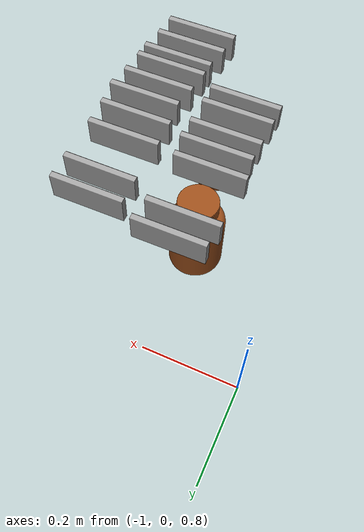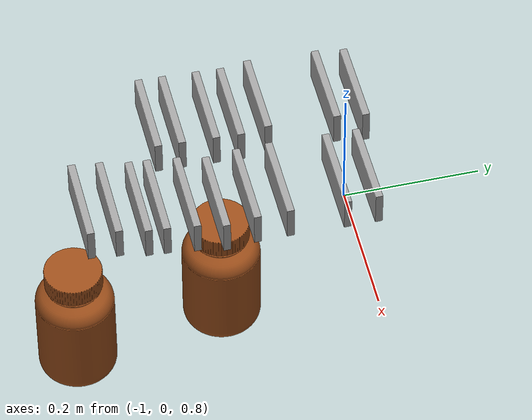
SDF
<sdf version="1.7">
 <world name="default">
  <model name="med_1_0_clone_1">
   <link name="link_0">
    <inertial>
     <mass>1</mass>
     <inertia>
      <ixx>0.166667</ixx>
      <ixy>0</ixy>
      <ixz>0</ixz>
      <iyy>0.166667</iyy>
      <iyz>0</iyz>
      <izz>0.166667</izz>
     </inertia>
    </inertial>
    <pose>0 -0.005 -0.025 0 -0 0</pose>
    <visual name="visual">
     <pose>0 0.005 0.025 0 -0 0</pose>
     <geometry><mesh><uri>model://med_1/meshes/med-1.dae</uri><scale>0.01 0.01 0.01</scale></mesh></geometry>
     <material>
      <shader type="pixel"><normal_map>__default__</normal_map></shader>
      <emissive>0 0 0 1</emissive>
     </material>
    </visual>
    <collision name="collision">
     <pose>0 0.005 0.025 0 -0 0</pose>
     <geometry><mesh><uri>model://med_1/meshes/med-1.dae</uri><scale>0.01 0.01 0.01</scale></mesh></geometry>
     <surface>
      <friction>
       <ode><mu>1</mu><mu2>1</mu2><fdir1>0 0 0</fdir1><slip1>0</slip1><slip2>0</slip2></ode>
       <torsional>
        <coefficient>1</coefficient>
        <patch_radius>0</patch_radius>
        <surface_radius>0</surface_radius>
        <use_patch_radius>1</use_patch_radius>
        <ode><slip>0</slip></ode>
       </torsional>
      </friction>
      <bounce><restitution_coefficient>0</restitution_coefficient><threshold>1e+06</threshold></bounce>
      <contact>
       <collide_without_contact>0</collide_without_contact>
       <collide_without_contact_bitmask>1</collide_without_contact_bitmask>
       <collide_bitmask>1</collide_bitmask>
       <ode>
        <soft_cfm>0</soft_cfm>
        <soft_erp>0.2</soft_erp>
        <kp>1e+13</kp>
        <kd>1</kd>
        <max_vel>0.01</max_vel>
        <min_depth>0</min_depth>
       </ode>
       <bullet>
        <split_impulse>1</split_impulse>
        <split_impulse_penetration_threshold>-0.01</split_impulse_penetration_threshold>
        <soft_cfm>0</soft_cfm>
        <soft_erp>0.2</soft_erp>
        <kp>1e+13</kp>
        <kd>1</kd>
       </bullet>
      </contact>
     </surface>
    </collision>
   </link>
   <static>0</static>
   <pose>-0.842985 -0.036532 1.20018 9e-06 -1e-06 -3.1318</pose>
  </model>
  <model name="med_1_0_clone_3">
   <link name="link_0">
    <inertial>
     <mass>1</mass>
     <inertia>
      <ixx>0.166667</ixx>
      <ixy>0</ixy>
      <ixz>0</ixz>
      <iyy>0.166667</iyy>
      <iyz>0</iyz>
      <izz>0.166667</izz>
     </inertia>
    </inertial>
    <pose>0 -0.005 -0.025 0 -0 0</pose>
    <visual name="visual">
     <pose>0 0.005 0.025 0 -0 0</pose>
     <geometry><mesh><uri>model://med_1/meshes/med-1.dae</uri><scale>0.01 0.01 0.01</scale></mesh></geometry>
     <material>
      <shader type="pixel"><normal_map>__default__</normal_map></shader>
      <emissive>0 0 0 1</emissive>
     </material>
    </visual>
    <collision name="collision">
     <pose>0 0.005 0.025 0 -0 0</pose>
     <geometry><mesh><uri>model://med_1/meshes/med-1.dae</uri><scale>0.01 0.01 0.01</scale></mesh></geometry>
     <surface>
      <friction>
       <ode><mu>1</mu><mu2>1</mu2><fdir1>0 0 0</fdir1><slip1>0</slip1><slip2>0</slip2></ode>
       <torsional>
        <coefficient>1</coefficient>
        <patch_radius>0</patch_radius>
        <surface_radius>0</surface_radius>
        <use_patch_radius>1</use_patch_radius>
        <ode><slip>0</slip></ode>
       </torsional>
      </friction>
      <bounce><restitution_coefficient>0</restitution_coefficient><threshold>1e+06</threshold></bounce>
      <contact>
       <collide_without_contact>0</collide_without_contact>
       <collide_without_contact_bitmask>1</collide_without_contact_bitmask>
       <collide_bitmask>1</collide_bitmask>
       <ode>
        <soft_cfm>0</soft_cfm>
        <soft_erp>0.2</soft_erp>
        <kp>1e+13</kp>
        <kd>1</kd>
        <max_vel>0.01</max_vel>
        <min_depth>0</min_depth>
       </ode>
       <bullet>
        <split_impulse>1</split_impulse>
        <split_impulse_penetration_threshold>-0.01</split_impulse_penetration_threshold>
        <soft_cfm>0</soft_cfm>
        <soft_erp>0.2</soft_erp>
        <kp>1e+13</kp>
        <kd>1</kd>
       </bullet>
      </contact>
     </surface>
    </collision>
   </link>
   <static>0</static>
   <pose>-0.701388 -0.054881 1.20018 -2.5e-05 -0 -3.13179</pose>
  </model>
  <model name="med_1_0_clone_5">
   <link name="link_0">
    <inertial>
     <mass>1</mass>
     <inertia>
      <ixx>0.166667</ixx>
      <ixy>0</ixy>
      <ixz>0</ixz>
      <iyy>0.166667</iyy>
      <iyz>0</iyz>
      <izz>0.166667</izz>
     </inertia>
    </inertial>
    <pose>0 -0.005 -0.025 0 -0 0</pose>
    <visual name="visual">
     <pose>0 0.005 0.025 0 -0 0</pose>
     <geometry><mesh><uri>model://med_1/meshes/med-1.dae</uri><scale>0.01 0.01 0.01</scale></mesh></geometry>
     <material>
      <shader type="pixel"><normal_map>__default__</normal_map></shader>
      <emissive>0 0 0 1</emissive>
     </material>
    </visual>
    <collision name="collision">
     <pose>0 0.005 0.025 0 -0 0</pose>
     <geometry><mesh><uri>model://med_1/meshes/med-1.dae</uri><scale>0.01 0.01 0.01</scale></mesh></geometry>
     <surface>
      <friction>
       <ode><mu>1</mu><mu2>1</mu2><fdir1>0 0 0</fdir1><slip1>0</slip1><slip2>0</slip2></ode>
       <torsional>
        <coefficient>1</coefficient>
        <patch_radius>0</patch_radius>
        <surface_radius>0</surface_radius>
        <use_patch_radius>1</use_patch_radius>
        <ode><slip>0</slip></ode>
       </torsional>
      </friction>
      <bounce><restitution_coefficient>0</restitution_coefficient><threshold>1e+06</threshold></bounce>
      <contact>
       <collide_without_contact>0</collide_without_contact>
       <collide_without_contact_bitmask>1</collide_without_contact_bitmask>
       <collide_bitmask>1</collide_bitmask>
       <ode>
        <soft_cfm>0</soft_cfm>
        <soft_erp>0.2</soft_erp>
        <kp>1e+13</kp>
        <kd>1</kd>
        <max_vel>0.01</max_vel>
        <min_depth>0</min_depth>
       </ode>
       <bullet>
        <split_impulse>1</split_impulse>
        <split_impulse_penetration_threshold>-0.01</split_impulse_penetration_threshold>
        <soft_cfm>0</soft_cfm>
        <soft_erp>0.2</soft_erp>
        <kp>1e+13</kp>
        <kd>1</kd>
       </bullet>
      </contact>
     </surface>
    </collision>
   </link>
   <static>0</static>
   <pose>-0.70204 -0.096122 1.20019 -2.1e-05 -1e-06 -3.13738</pose>
  </model>
  <model name="med_1_0_clone_7">
   <link name="link_0">
    <inertial>
     <mass>1</mass>
     <inertia>
      <ixx>0.166667</ixx>
      <ixy>0</ixy>
      <ixz>0</ixz>
      <iyy>0.166667</iyy>
      <iyz>0</iyz>
      <izz>0.166667</izz>
     </inertia>
    </inertial>
    <pose>0 -0.005 -0.025 0 -0 0</pose>
    <visual name="visual">
     <pose>0 0.005 0.025 0 -0 0</pose>
     <geometry><mesh><uri>model://med_1/meshes/med-1.dae</uri><scale>0.01 0.01 0.01</scale></mesh></geometry>
     <material>
      <shader type="pixel"><normal_map>__default__</normal_map></shader>
      <emissive>0 0 0 1</emissive>
     </material>
    </visual>
    <collision name="collision">
     <pose>0 0.005 0.025 0 -0 0</pose>
     <geometry><mesh><uri>model://med_1/meshes/med-1.dae</uri><scale>0.01 0.01 0.01</scale></mesh></geometry>
     <surface>
      <friction>
       <ode><mu>1</mu><mu2>1</mu2><fdir1>0 0 0</fdir1><slip1>0</slip1><slip2>0</slip2></ode>
       <torsional>
        <coefficient>1</coefficient>
        <patch_radius>0</patch_radius>
        <surface_radius>0</surface_radius>
        <use_patch_radius>1</use_patch_radius>
        <ode><slip>0</slip></ode>
       </torsional>
      </friction>
      <bounce><restitution_coefficient>0</restitution_coefficient><threshold>1e+06</threshold></bounce>
      <contact>
       <collide_without_contact>0</collide_without_contact>
       <collide_without_contact_bitmask>1</collide_without_contact_bitmask>
       <collide_bitmask>1</collide_bitmask>
       <ode>
        <soft_cfm>0</soft_cfm>
        <soft_erp>0.2</soft_erp>
        <kp>1e+13</kp>
        <kd>1</kd>
        <max_vel>0.01</max_vel>
        <min_depth>0</min_depth>
       </ode>
       <bullet>
        <split_impulse>1</split_impulse>
        <split_impulse_penetration_threshold>-0.01</split_impulse_penetration_threshold>
        <soft_cfm>0</soft_cfm>
        <soft_erp>0.2</soft_erp>
        <kp>1e+13</kp>
        <kd>1</kd>
       </bullet>
      </contact>
     </surface>
    </collision>
   </link>
   <static>0</static>
   <pose>-0.700002 -0.258197 1.20019 1e-06 -2e-06 -3.13179</pose>
  </model>
  <model name="med_1_0_clone_8">
   <link name="link_0">
    <inertial>
     <mass>1</mass>
     <inertia>
      <ixx>0.166667</ixx>
      <ixy>0</ixy>
      <ixz>0</ixz>
      <iyy>0.166667</iyy>
      <iyz>0</iyz>
      <izz>0.166667</izz>
     </inertia>
    </inertial>
    <pose>0 -0.005 -0.025 0 -0 0</pose>
    <visual name="visual">
     <pose>0 0.005 0.025 0 -0 0</pose>
     <geometry><mesh><uri>model://med_1/meshes/med-1.dae</uri><scale>0.01 0.01 0.01</scale></mesh></geometry>
     <material>
      <shader type="pixel"><normal_map>__default__</normal_map></shader>
      <emissive>0 0 0 1</emissive>
     </material>
    </visual>
    <collision name="collision">
     <pose>0 0.005 0.025 0 -0 0</pose>
     <geometry><mesh><uri>model://med_1/meshes/med-1.dae</uri><scale>0.01 0.01 0.01</scale></mesh></geometry>
     <surface>
      <friction>
       <ode><mu>1</mu><mu2>1</mu2><fdir1>0 0 0</fdir1><slip1>0</slip1><slip2>0</slip2></ode>
       <torsional>
        <coefficient>1</coefficient>
        <patch_radius>0</patch_radius>
        <surface_radius>0</surface_radius>
        <use_patch_radius>1</use_patch_radius>
        <ode><slip>0</slip></ode>
       </torsional>
      </friction>
      <bounce><restitution_coefficient>0</restitution_coefficient><threshold>1e+06</threshold></bounce>
      <contact>
       <collide_without_contact>0</collide_without_contact>
       <collide_without_contact_bitmask>1</collide_without_contact_bitmask>
       <collide_bitmask>1</collide_bitmask>
       <ode>
        <soft_cfm>0</soft_cfm>
        <soft_erp>0.2</soft_erp>
        <kp>1e+13</kp>
        <kd>1</kd>
        <max_vel>0.01</max_vel>
        <min_depth>0</min_depth>
       </ode>
       <bullet>
        <split_impulse>1</split_impulse>
        <split_impulse_penetration_threshold>-0.01</split_impulse_penetration_threshold>
        <soft_cfm>0</soft_cfm>
        <soft_erp>0.2</soft_erp>
        <kp>1e+13</kp>
        <kd>1</kd>
       </bullet>
      </contact>
     </surface>
    </collision>
   </link>
   <static>0</static>
   <pose>-0.84749 -0.204821 1.20018 -1.6e-05 0 -3.13181</pose>
  </model>
  <model name="med_1_0_clone_10">
   <link name="link_0">
    <inertial>
     <mass>1</mass>
     <inertia>
      <ixx>0.166667</ixx>
      <ixy>0</ixy>
      <ixz>0</ixz>
      <iyy>0.166667</iyy>
      <iyz>0</iyz>
      <izz>0.166667</izz>
     </inertia>
    </inertial>
    <pose>0 -0.005 -0.025 0 -0 0</pose>
    <visual name="visual">
     <pose>0 0.005 0.025 0 -0 0</pose>
     <geometry><mesh><uri>model://med_1/meshes/med-1.dae</uri><scale>0.01 0.01 0.01</scale></mesh></geometry>
     <material>
      <shader type="pixel"><normal_map>__default__</normal_map></shader>
      <emissive>0 0 0 1</emissive>
     </material>
    </visual>
    <collision name="collision">
     <pose>0 0.005 0.025 0 -0 0</pose>
     <geometry><mesh><uri>model://med_1/meshes/med-1.dae</uri><scale>0.01 0.01 0.01</scale></mesh></geometry>
     <surface>
      <friction>
       <ode><mu>1</mu><mu2>1</mu2><fdir1>0 0 0</fdir1><slip1>0</slip1><slip2>0</slip2></ode>
       <torsional>
        <coefficient>1</coefficient>
        <patch_radius>0</patch_radius>
        <surface_radius>0</surface_radius>
        <use_patch_radius>1</use_patch_radius>
        <ode><slip>0</slip></ode>
       </torsional>
      </friction>
      <bounce><restitution_coefficient>0</restitution_coefficient><threshold>1e+06</threshold></bounce>
      <contact>
       <collide_without_contact>0</collide_without_contact>
       <collide_without_contact_bitmask>1</collide_without_contact_bitmask>
       <collide_bitmask>1</collide_bitmask>
       <ode>
        <soft_cfm>0</soft_cfm>
        <soft_erp>0.2</soft_erp>
        <kp>1e+13</kp>
        <kd>1</kd>
        <max_vel>0.01</max_vel>
        <min_depth>0</min_depth>
       </ode>
       <bullet>
        <split_impulse>1</split_impulse>
        <split_impulse_penetration_threshold>-0.01</split_impulse_penetration_threshold>
        <soft_cfm>0</soft_cfm>
        <soft_erp>0.2</soft_erp>
        <kp>1e+13</kp>
        <kd>1</kd>
       </bullet>
      </contact>
     </surface>
    </collision>
   </link>
   <static>0</static>
   <pose>-0.848659 -0.074496 1.20018 -8e-06 -1e-06 -3.13174</pose>
  </model>
  <model name="med_1_0_clone_11">
   <link name="link_0">
    <inertial>
     <mass>1</mass>
     <inertia>
      <ixx>0.166667</ixx>
      <ixy>0</ixy>
      <ixz>0</ixz>
      <iyy>0.166667</iyy>
      <iyz>0</iyz>
      <izz>0.166667</izz>
     </inertia>
    </inertial>
    <pose>0 -0.005 -0.025 0 -0 0</pose>
    <visual name="visual">
     <pose>0 0.005 0.025 0 -0 0</pose>
     <geometry><mesh><uri>model://med_1/meshes/med-1.dae</uri><scale>0.01 0.01 0.01</scale></mesh></geometry>
     <material>
      <shader type="pixel"><normal_map>__default__</normal_map></shader>
      <emissive>0 0 0 1</emissive>
     </material>
    </visual>
    <collision name="collision">
     <pose>0 0.005 0.025 0 -0 0</pose>
     <geometry><mesh><uri>model://med_1/meshes/med-1.dae</uri><scale>0.01 0.01 0.01</scale></mesh></geometry>
     <surface>
      <friction>
       <ode><mu>1</mu><mu2>1</mu2><fdir1>0 0 0</fdir1><slip1>0</slip1><slip2>0</slip2></ode>
       <torsional>
        <coefficient>1</coefficient>
        <patch_radius>0</patch_radius>
        <surface_radius>0</surface_radius>
        <use_patch_radius>1</use_patch_radius>
        <ode><slip>0</slip></ode>
       </torsional>
      </friction>
      <bounce><restitution_coefficient>0</restitution_coefficient><threshold>1e+06</threshold></bounce>
      <contact>
       <collide_without_contact>0</collide_without_contact>
       <collide_without_contact_bitmask>1</collide_without_contact_bitmask>
       <collide_bitmask>1</collide_bitmask>
       <ode>
        <soft_cfm>0</soft_cfm>
        <soft_erp>0.2</soft_erp>
        <kp>1e+13</kp>
        <kd>1</kd>
        <max_vel>0.01</max_vel>
        <min_depth>0</min_depth>
       </ode>
       <bullet>
        <split_impulse>1</split_impulse>
        <split_impulse_penetration_threshold>-0.01</split_impulse_penetration_threshold>
        <soft_cfm>0</soft_cfm>
        <soft_erp>0.2</soft_erp>
        <kp>1e+13</kp>
        <kd>1</kd>
       </bullet>
      </contact>
     </surface>
    </collision>
   </link>
   <static>0</static>
   <pose>-0.85286 -0.16694 1.20018 0 1e-06 -3.13179</pose>
  </model>
  <model name="med_1_0_clone_12">
   <link name="link_0">
    <inertial>
     <mass>1</mass>
     <inertia>
      <ixx>0.166667</ixx>
      <ixy>0</ixy>
      <ixz>0</ixz>
      <iyy>0.166667</iyy>
      <iyz>0</iyz>
      <izz>0.166667</izz>
     </inertia>
    </inertial>
    <pose>0 -0.005 -0.025 0 -0 0</pose>
    <visual name="visual">
     <pose>0 0.005 0.025 0 -0 0</pose>
     <geometry><mesh><uri>model://med_1/meshes/med-1.dae</uri><scale>0.01 0.01 0.01</scale></mesh></geometry>
     <material>
      <shader type="pixel"><normal_map>__default__</normal_map></shader>
      <emissive>0 0 0 1</emissive>
     </material>
    </visual>
    <collision name="collision">
     <pose>0 0.005 0.025 0 -0 0</pose>
     <geometry><mesh><uri>model://med_1/meshes/med-1.dae</uri><scale>0.01 0.01 0.01</scale></mesh></geometry>
     <surface>
      <friction>
       <ode><mu>1</mu><mu2>1</mu2><fdir1>0 0 0</fdir1><slip1>0</slip1><slip2>0</slip2></ode>
       <torsional>
        <coefficient>1</coefficient>
        <patch_radius>0</patch_radius>
        <surface_radius>0</surface_radius>
        <use_patch_radius>1</use_patch_radius>
        <ode><slip>0</slip></ode>
       </torsional>
      </friction>
      <bounce><restitution_coefficient>0</restitution_coefficient><threshold>1e+06</threshold></bounce>
      <contact>
       <collide_without_contact>0</collide_without_contact>
       <collide_without_contact_bitmask>1</collide_without_contact_bitmask>
       <collide_bitmask>1</collide_bitmask>
       <ode>
        <soft_cfm>0</soft_cfm>
        <soft_erp>0.2</soft_erp>
        <kp>1e+13</kp>
        <kd>1</kd>
        <max_vel>0.01</max_vel>
        <min_depth>0</min_depth>
       </ode>
       <bullet>
        <split_impulse>1</split_impulse>
        <split_impulse_penetration_threshold>-0.01</split_impulse_penetration_threshold>
        <soft_cfm>0</soft_cfm>
        <soft_erp>0.2</soft_erp>
        <kp>1e+13</kp>
        <kd>1</kd>
       </bullet>
      </contact>
     </surface>
    </collision>
   </link>
   <static>0</static>
   <pose>-0.851503 -0.283477 1.20018 -1.4e-05 -0 -3.1318</pose>
  </model>
  <model name="med_1_0_clone_13">
   <link name="link_0">
    <inertial>
     <mass>1</mass>
     <inertia>
      <ixx>0.166667</ixx>
      <ixy>0</ixy>
      <ixz>0</ixz>
      <iyy>0.166667</iyy>
      <iyz>0</iyz>
      <izz>0.166667</izz>
     </inertia>
    </inertial>
    <pose>0 -0.005 -0.025 0 -0 0</pose>
    <visual name="visual">
     <pose>0 0.005 0.025 0 -0 0</pose>
     <geometry><mesh><uri>model://med_1/meshes/med-1.dae</uri><scale>0.01 0.01 0.01</scale></mesh></geometry>
     <material>
      <shader type="pixel"><normal_map>__default__</normal_map></shader>
      <emissive>0 0 0 1</emissive>
     </material>
    </visual>
    <collision name="collision">
     <pose>0 0.005 0.025 0 -0 0</pose>
     <geometry><mesh><uri>model://med_1/meshes/med-1.dae</uri><scale>0.01 0.01 0.01</scale></mesh></geometry>
     <surface>
      <friction>
       <ode><mu>1</mu><mu2>1</mu2><fdir1>0 0 0</fdir1><slip1>0</slip1><slip2>0</slip2></ode>
       <torsional>
        <coefficient>1</coefficient>
        <patch_radius>0</patch_radius>
        <surface_radius>0</surface_radius>
        <use_patch_radius>1</use_patch_radius>
        <ode><slip>0</slip></ode>
       </torsional>
      </friction>
      <bounce><restitution_coefficient>0</restitution_coefficient><threshold>1e+06</threshold></bounce>
      <contact>
       <collide_without_contact>0</collide_without_contact>
       <collide_without_contact_bitmask>1</collide_without_contact_bitmask>
       <collide_bitmask>1</collide_bitmask>
       <ode>
        <soft_cfm>0</soft_cfm>
        <soft_erp>0.2</soft_erp>
        <kp>1e+13</kp>
        <kd>1</kd>
        <max_vel>0.01</max_vel>
        <min_depth>0</min_depth>
       </ode>
       <bullet>
        <split_impulse>1</split_impulse>
        <split_impulse_penetration_threshold>-0.01</split_impulse_penetration_threshold>
        <soft_cfm>0</soft_cfm>
        <soft_erp>0.2</soft_erp>
        <kp>1e+13</kp>
        <kd>1</kd>
       </bullet>
      </contact>
     </surface>
    </collision>
   </link>
   <static>0</static>
   <pose>-0.704642 -0.17234 1.20018 -2.6e-05 1e-06 -3.13179</pose>
  </model>
  <model name="med_1_0_clone_17">
   <link name="link_0">
    <inertial>
     <mass>1</mass>
     <inertia>
      <ixx>0.166667</ixx>
      <ixy>0</ixy>
      <ixz>0</ixz>
      <iyy>0.166667</iyy>
      <iyz>0</iyz>
      <izz>0.166667</izz>
     </inertia>
    </inertial>
    <pose>0 -0.005 -0.025 0 -0 0</pose>
    <visual name="visual">
     <pose>0 0.005 0.025 0 -0 0</pose>
     <geometry><mesh><uri>model://med_1/meshes/med-1.dae</uri><scale>0.01 0.01 0.01</scale></mesh></geometry>
     <material>
      <shader type="pixel"><normal_map>__default__</normal_map></shader>
      <emissive>0 0 0 1</emissive>
     </material>
    </visual>
    <collision name="collision">
     <pose>0 0.005 0.025 0 -0 0</pose>
     <geometry><mesh><uri>model://med_1/meshes/med-1.dae</uri><scale>0.01 0.01 0.01</scale></mesh></geometry>
     <surface>
      <friction>
       <ode><mu>1</mu><mu2>1</mu2><fdir1>0 0 0</fdir1><slip1>0</slip1><slip2>0</slip2></ode>
       <torsional>
        <coefficient>1</coefficient>
        <patch_radius>0</patch_radius>
        <surface_radius>0</surface_radius>
        <use_patch_radius>1</use_patch_radius>
        <ode><slip>0</slip></ode>
       </torsional>
      </friction>
      <bounce><restitution_coefficient>0</restitution_coefficient><threshold>1e+06</threshold></bounce>
      <contact>
       <collide_without_contact>0</collide_without_contact>
       <collide_without_contact_bitmask>1</collide_without_contact_bitmask>
       <collide_bitmask>1</collide_bitmask>
       <ode>
        <soft_cfm>0</soft_cfm>
        <soft_erp>0.2</soft_erp>
        <kp>1e+13</kp>
        <kd>1</kd>
        <max_vel>0.01</max_vel>
        <min_depth>0</min_depth>
       </ode>
       <bullet>
        <split_impulse>1</split_impulse>
        <split_impulse_penetration_threshold>-0.01</split_impulse_penetration_threshold>
        <soft_cfm>0</soft_cfm>
        <soft_erp>0.2</soft_erp>
        <kp>1e+13</kp>
        <kd>1</kd>
       </bullet>
      </contact>
     </surface>
    </collision>
   </link>
   <static>0</static>
   <pose>-0.707918 -0.295261 1.20018 -7e-06 -0 -3.13178</pose>
  </model>
  <model name="med_1_0_clone_21">
   <link name="link_0">
    <inertial>
     <mass>1</mass>
     <inertia>
      <ixx>0.166667</ixx>
      <ixy>0</ixy>
      <ixz>0</ixz>
      <iyy>0.166667</iyy>
      <iyz>0</iyz>
      <izz>0.166667</izz>
     </inertia>
    </inertial>
    <pose>0 -0.005 -0.025 0 -0 0</pose>
    <visual name="visual">
     <pose>0 0.005 0.025 0 -0 0</pose>
     <geometry><mesh><uri>model://med_1/meshes/med-1.dae</uri><scale>0.01 0.01 0.01</scale></mesh></geometry>
     <material>
      <shader type="pixel"><normal_map>__default__</normal_map></shader>
      <emissive>0 0 0 1</emissive>
     </material>
    </visual>
    <collision name="collision">
     <pose>0 0.005 0.025 0 -0 0</pose>
     <geometry><mesh><uri>model://med_1/meshes/med-1.dae</uri><scale>0.01 0.01 0.01</scale></mesh></geometry>
     <surface>
      <friction>
       <ode><mu>1</mu><mu2>1</mu2><fdir1>0 0 0</fdir1><slip1>0</slip1><slip2>0</slip2></ode>
       <torsional>
        <coefficient>1</coefficient>
        <patch_radius>0</patch_radius>
        <surface_radius>0</surface_radius>
        <use_patch_radius>1</use_patch_radius>
        <ode><slip>0</slip></ode>
       </torsional>
      </friction>
      <bounce><restitution_coefficient>0</restitution_coefficient><threshold>1e+06</threshold></bounce>
      <contact>
       <collide_without_contact>0</collide_without_contact>
       <collide_without_contact_bitmask>1</collide_without_contact_bitmask>
       <collide_bitmask>1</collide_bitmask>
       <ode>
        <soft_cfm>0</soft_cfm>
        <soft_erp>0.2</soft_erp>
        <kp>1e+13</kp>
        <kd>1</kd>
        <max_vel>0.01</max_vel>
        <min_depth>0</min_depth>
       </ode>
       <bullet>
        <split_impulse>1</split_impulse>
        <split_impulse_penetration_threshold>-0.01</split_impulse_penetration_threshold>
        <soft_cfm>0</soft_cfm>
        <soft_erp>0.2</soft_erp>
        <kp>1e+13</kp>
        <kd>1</kd>
       </bullet>
      </contact>
     </surface>
    </collision>
   </link>
   <static>0</static>
   <pose>-0.852769 -0.31528 1.20019 -8e-06 0 -3.13178</pose>
  </model>
  <model name="med_1_0_clone_24">
   <link name="link_0">
    <inertial>
     <mass>1</mass>
     <inertia>
      <ixx>0.166667</ixx>
      <ixy>0</ixy>
      <ixz>0</ixz>
      <iyy>0.166667</iyy>
      <iyz>0</iyz>
      <izz>0.166667</izz>
     </inertia>
    </inertial>
    <pose>0 -0.005 -0.025 0 -0 0</pose>
    <visual name="visual">
     <pose>0 0.005 0.025 0 -0 0</pose>
     <geometry><mesh><uri>model://med_1/meshes/med-1.dae</uri><scale>0.01 0.01 0.01</scale></mesh></geometry>
     <material>
      <shader type="pixel"><normal_map>__default__</normal_map></shader>
      <emissive>0 0 0 1</emissive>
     </material>
    </visual>
    <collision name="collision">
     <pose>0 0.005 0.025 0 -0 0</pose>
     <geometry><mesh><uri>model://med_1/meshes/med-1.dae</uri><scale>0.01 0.01 0.01</scale></mesh></geometry>
     <surface>
      <friction>
       <ode><mu>1</mu><mu2>1</mu2><fdir1>0 0 0</fdir1><slip1>0</slip1><slip2>0</slip2></ode>
       <torsional>
        <coefficient>1</coefficient>
        <patch_radius>0</patch_radius>
        <surface_radius>0</surface_radius>
        <use_patch_radius>1</use_patch_radius>
        <ode><slip>0</slip></ode>
       </torsional>
      </friction>
      <bounce><restitution_coefficient>0</restitution_coefficient><threshold>1e+06</threshold></bounce>
      <contact>
       <collide_without_contact>0</collide_without_contact>
       <collide_without_contact_bitmask>1</collide_without_contact_bitmask>
       <collide_bitmask>1</collide_bitmask>
       <ode>
        <soft_cfm>0</soft_cfm>
        <soft_erp>0.2</soft_erp>
        <kp>1e+13</kp>
        <kd>1</kd>
        <max_vel>0.01</max_vel>
        <min_depth>0</min_depth>
       </ode>
       <bullet>
        <split_impulse>1</split_impulse>
        <split_impulse_penetration_threshold>-0.01</split_impulse_penetration_threshold>
        <soft_cfm>0</soft_cfm>
        <soft_erp>0.2</soft_erp>
        <kp>1e+13</kp>
        <kd>1</kd>
       </bullet>
      </contact>
     </surface>
    </collision>
   </link>
   <static>0</static>
   <pose>-0.849336 -0.237916 1.20019 6e-06 1e-06 -3.1318</pose>
  </model>
  <model name="med_1_0_clone_27">
   <link name="link_0">
    <inertial>
     <mass>1</mass>
     <inertia>
      <ixx>0.166667</ixx>
      <ixy>0</ixy>
      <ixz>0</ixz>
      <iyy>0.166667</iyy>
      <iyz>0</iyz>
      <izz>0.166667</izz>
     </inertia>
    </inertial>
    <pose>0 -0.005 -0.025 0 -0 0</pose>
    <visual name="visual">
     <pose>0 0.005 0.025 0 -0 0</pose>
     <geometry><mesh><uri>model://med_1/meshes/med-1.dae</uri><scale>0.01 0.01 0.01</scale></mesh></geometry>
     <material>
      <shader type="pixel"><normal_map>__default__</normal_map></shader>
      <emissive>0 0 0 1</emissive>
     </material>
    </visual>
    <collision name="collision">
     <pose>0 0.005 0.025 0 -0 0</pose>
     <geometry><mesh><uri>model://med_1/meshes/med-1.dae</uri><scale>0.01 0.01 0.01</scale></mesh></geometry>
     <surface>
      <friction>
       <ode><mu>1</mu><mu2>1</mu2><fdir1>0 0 0</fdir1><slip1>0</slip1><slip2>0</slip2></ode>
       <torsional>
        <coefficient>1</coefficient>
        <patch_radius>0</patch_radius>
        <surface_radius>0</surface_radius>
        <use_patch_radius>1</use_patch_radius>
        <ode><slip>0</slip></ode>
       </torsional>
      </friction>
      <bounce><restitution_coefficient>0</restitution_coefficient><threshold>1e+06</threshold></bounce>
      <contact>
       <collide_without_contact>0</collide_without_contact>
       <collide_without_contact_bitmask>1</collide_without_contact_bitmask>
       <collide_bitmask>1</collide_bitmask>
       <ode>
        <soft_cfm>0</soft_cfm>
        <soft_erp>0.2</soft_erp>
        <kp>1e+13</kp>
        <kd>1</kd>
        <max_vel>0.01</max_vel>
        <min_depth>0</min_depth>
       </ode>
       <bullet>
        <split_impulse>1</split_impulse>
        <split_impulse_penetration_threshold>-0.01</split_impulse_penetration_threshold>
        <soft_cfm>0</soft_cfm>
        <soft_erp>0.2</soft_erp>
        <kp>1e+13</kp>
        <kd>1</kd>
       </bullet>
      </contact>
     </surface>
    </collision>
   </link>
   <static>0</static>
   <pose>-0.727259 -0.431791 1.20019 -2.1e-05 2e-06 -3.13181</pose>
  </model>
  <model name="med_1_0_clone_28">
   <link name="link_0">
    <inertial>
     <mass>1</mass>
     <inertia>
      <ixx>0.166667</ixx>
      <ixy>0</ixy>
      <ixz>0</ixz>
      <iyy>0.166667</iyy>
      <iyz>0</iyz>
      <izz>0.166667</izz>
     </inertia>
    </inertial>
    <pose>0 -0.005 -0.025 0 -0 0</pose>
    <visual name="visual">
     <pose>0 0.005 0.025 0 -0 0</pose>
     <geometry><mesh><uri>model://med_1/meshes/med-1.dae</uri><scale>0.01 0.01 0.01</scale></mesh></geometry>
     <material>
      <shader type="pixel"><normal_map>__default__</normal_map></shader>
      <emissive>0 0 0 1</emissive>
     </material>
    </visual>
    <collision name="collision">
     <pose>0 0.005 0.025 0 -0 0</pose>
     <geometry><mesh><uri>model://med_1/meshes/med-1.dae</uri><scale>0.01 0.01 0.01</scale></mesh></geometry>
     <surface>
      <friction>
       <ode><mu>1</mu><mu2>1</mu2><fdir1>0 0 0</fdir1><slip1>0</slip1><slip2>0</slip2></ode>
       <torsional>
        <coefficient>1</coefficient>
        <patch_radius>0</patch_radius>
        <surface_radius>0</surface_radius>
        <use_patch_radius>1</use_patch_radius>
        <ode><slip>0</slip></ode>
       </torsional>
      </friction>
      <bounce><restitution_coefficient>0</restitution_coefficient><threshold>1e+06</threshold></bounce>
      <contact>
       <collide_without_contact>0</collide_without_contact>
       <collide_without_contact_bitmask>1</collide_without_contact_bitmask>
       <collide_bitmask>1</collide_bitmask>
       <ode>
        <soft_cfm>0</soft_cfm>
        <soft_erp>0.2</soft_erp>
        <kp>1e+13</kp>
        <kd>1</kd>
        <max_vel>0.01</max_vel>
        <min_depth>0</min_depth>
       </ode>
       <bullet>
        <split_impulse>1</split_impulse>
        <split_impulse_penetration_threshold>-0.01</split_impulse_penetration_threshold>
        <soft_cfm>0</soft_cfm>
        <soft_erp>0.2</soft_erp>
        <kp>1e+13</kp>
        <kd>1</kd>
       </bullet>
      </contact>
     </surface>
    </collision>
   </link>
   <static>0</static>
   <pose>-0.722868 -0.395484 1.20018 1e-05 -0 -3.13178</pose>
  </model>
  <model name="med_1_0_clone_30">
   <link name="link_0">
    <inertial>
     <mass>1</mass>
     <inertia>
      <ixx>0.166667</ixx>
      <ixy>0</ixy>
      <ixz>0</ixz>
      <iyy>0.166667</iyy>
      <iyz>0</iyz>
      <izz>0.166667</izz>
     </inertia>
    </inertial>
    <pose>0 -0.005 -0.025 0 -0 0</pose>
    <visual name="visual">
     <pose>0 0.005 0.025 0 -0 0</pose>
     <geometry><mesh><uri>model://med_1/meshes/med-1.dae</uri><scale>0.01 0.01 0.01</scale></mesh></geometry>
     <material>
      <shader type="pixel"><normal_map>__default__</normal_map></shader>
      <emissive>0 0 0 1</emissive>
     </material>
    </visual>
    <collision name="collision">
     <pose>0 0.005 0.025 0 -0 0</pose>
     <geometry><mesh><uri>model://med_1/meshes/med-1.dae</uri><scale>0.01 0.01 0.01</scale></mesh></geometry>
     <surface>
      <friction>
       <ode><mu>1</mu><mu2>1</mu2><fdir1>0 0 0</fdir1><slip1>0</slip1><slip2>0</slip2></ode>
       <torsional>
        <coefficient>1</coefficient>
        <patch_radius>0</patch_radius>
        <surface_radius>0</surface_radius>
        <use_patch_radius>1</use_patch_radius>
        <ode><slip>0</slip></ode>
       </torsional>
      </friction>
      <bounce><restitution_coefficient>0</restitution_coefficient><threshold>1e+06</threshold></bounce>
      <contact>
       <collide_without_contact>0</collide_without_contact>
       <collide_without_contact_bitmask>1</collide_without_contact_bitmask>
       <collide_bitmask>1</collide_bitmask>
       <ode>
        <soft_cfm>0</soft_cfm>
        <soft_erp>0.2</soft_erp>
        <kp>1e+13</kp>
        <kd>1</kd>
        <max_vel>0.01</max_vel>
        <min_depth>0</min_depth>
       </ode>
       <bullet>
        <split_impulse>1</split_impulse>
        <split_impulse_penetration_threshold>-0.01</split_impulse_penetration_threshold>
        <soft_cfm>0</soft_cfm>
        <soft_erp>0.2</soft_erp>
        <kp>1e+13</kp>
        <kd>1</kd>
       </bullet>
      </contact>
     </surface>
    </collision>
   </link>
   <static>0</static>
   <pose>-0.714749 -0.358219 1.20018 4e-06 -0 -3.13178</pose>
  </model>
  <model name="med_1_0_clone_32">
   <link name="link_0">
    <inertial>
     <mass>1</mass>
     <inertia>
      <ixx>0.166667</ixx>
      <ixy>0</ixy>
      <ixz>0</ixz>
      <iyy>0.166667</iyy>
      <iyz>0</iyz>
      <izz>0.166667</izz>
     </inertia>
    </inertial>
    <pose>0 -0.005 -0.025 0 -0 0</pose>
    <visual name="visual">
     <pose>0 0.005 0.025 0 -0 0</pose>
     <geometry><mesh><uri>model://med_1/meshes/med-1.dae</uri><scale>0.01 0.01 0.01</scale></mesh></geometry>
     <material>
      <shader type="pixel"><normal_map>__default__</normal_map></shader>
      <emissive>0 0 0 1</emissive>
     </material>
    </visual>
    <collision name="collision">
     <pose>0 0.005 0.025 0 -0 0</pose>
     <geometry><mesh><uri>model://med_1/meshes/med-1.dae</uri><scale>0.01 0.01 0.01</scale></mesh></geometry>
     <surface>
      <friction>
       <ode><mu>1</mu><mu2>1</mu2><fdir1>0 0 0</fdir1><slip1>0</slip1><slip2>0</slip2></ode>
       <torsional>
        <coefficient>1</coefficient>
        <patch_radius>0</patch_radius>
        <surface_radius>0</surface_radius>
        <use_patch_radius>1</use_patch_radius>
        <ode><slip>0</slip></ode>
       </torsional>
      </friction>
      <bounce><restitution_coefficient>0</restitution_coefficient><threshold>1e+06</threshold></bounce>
      <contact>
       <collide_without_contact>0</collide_without_contact>
       <collide_without_contact_bitmask>1</collide_without_contact_bitmask>
       <collide_bitmask>1</collide_bitmask>
       <ode>
        <soft_cfm>0</soft_cfm>
        <soft_erp>0.2</soft_erp>
        <kp>1e+13</kp>
        <kd>1</kd>
        <max_vel>0.01</max_vel>
        <min_depth>0</min_depth>
       </ode>
       <bullet>
        <split_impulse>1</split_impulse>
        <split_impulse_penetration_threshold>-0.01</split_impulse_penetration_threshold>
        <soft_cfm>0</soft_cfm>
        <soft_erp>0.2</soft_erp>
        <kp>1e+13</kp>
        <kd>1</kd>
       </bullet>
      </contact>
     </surface>
    </collision>
   </link>
   <static>0</static>
   <pose>-0.712807 -0.334258 1.20018 -5e-06 1e-06 -3.13178</pose>
  </model>
  <model name="med_1_0_clone_38">
   <link name="link_0">
    <inertial>
     <mass>1</mass>
     <inertia>
      <ixx>0.166667</ixx>
      <ixy>0</ixy>
      <ixz>0</ixz>
      <iyy>0.166667</iyy>
      <iyz>0</iyz>
      <izz>0.166667</izz>
     </inertia>
    </inertial>
    <pose>0 -0.005 -0.025 0 -0 0</pose>
    <visual name="visual">
     <pose>0 0.005 0.025 0 -0 0</pose>
     <geometry><mesh><uri>model://med_1/meshes/med-1.dae</uri><scale>0.01 0.01 0.01</scale></mesh></geometry>
     <material>
      <shader type="pixel"><normal_map>__default__</normal_map></shader>
      <emissive>0 0 0 1</emissive>
     </material>
    </visual>
    <collision name="collision">
     <pose>0 0.005 0.025 0 -0 0</pose>
     <geometry><mesh><uri>model://med_1/meshes/med-1.dae</uri><scale>0.01 0.01 0.01</scale></mesh></geometry>
     <surface>
      <friction>
       <ode><mu>1</mu><mu2>1</mu2><fdir1>0 0 0</fdir1><slip1>0</slip1><slip2>0</slip2></ode>
       <torsional>
        <coefficient>1</coefficient>
        <patch_radius>0</patch_radius>
        <surface_radius>0</surface_radius>
        <use_patch_radius>1</use_patch_radius>
        <ode><slip>0</slip></ode>
       </torsional>
      </friction>
      <bounce><restitution_coefficient>0</restitution_coefficient><threshold>1e+06</threshold></bounce>
      <contact>
       <collide_without_contact>0</collide_without_contact>
       <collide_without_contact_bitmask>1</collide_without_contact_bitmask>
       <collide_bitmask>1</collide_bitmask>
       <ode>
        <soft_cfm>0</soft_cfm>
        <soft_erp>0.2</soft_erp>
        <kp>1e+13</kp>
        <kd>1</kd>
        <max_vel>0.01</max_vel>
        <min_depth>0</min_depth>
       </ode>
       <bullet>
        <split_impulse>1</split_impulse>
        <split_impulse_penetration_threshold>-0.01</split_impulse_penetration_threshold>
        <soft_cfm>0</soft_cfm>
        <soft_erp>0.2</soft_erp>
        <kp>1e+13</kp>
        <kd>1</kd>
       </bullet>
      </contact>
     </surface>
    </collision>
   </link>
   <static>0</static>
   <pose>-0.704228 -0.21626 1.20018 -4e-06 1e-06 -3.13179</pose>
  </model>
  <model name="Medicine_Bottle_1">
   <static>0</static>
   <link name="medicine_bottle_link">
    <inertial>
     <mass>0.05</mass>
     <inertia><ixx>1e-05</ixx><ixy>0</ixy><ixz>0</ixz><iyy>1e-05</iyy><iyz>0</iyz><izz>1e-05</izz></inertia>
    </inertial>
    <visual name="visual">
     <geometry>
      <mesh><uri>model://Medicine_Bottle/meshes/Medicine_Bottle.stl</uri><scale>0.1 0.1 0.1</scale></mesh>
     </geometry>
     <material>
      <ambient>0.3 0.2 0.05 1</ambient>
      <diffuse>0.6 0.3 0.1 1</diffuse>
      <specular>0.2 0.2 0.2 1</specular>
      <emissive>0 0 0 1</emissive>
     </material>
    </visual>
    <collision name="collision">
     <geometry>
      <mesh><uri>model://Medicine_Bottle/meshes/Medicine_Bottle.stl</uri><scale>0.1 0.1 0.1</scale></mesh>
     </geometry>
    </collision>
   </link>
   <pose>-0.77746 -0.434976 0.824988 -0.000157 -0.000412 -0.007111</pose>
  </model>
  <model name="Medicine_Bottle_1_clone_0_clone">
   <static>0</static>
   <link name="medicine_bottle_link">
    <inertial>
     <mass>0.05</mass>
     <inertia><ixx>1e-05</ixx><ixy>0</ixy><ixz>0</ixz><iyy>1e-05</iyy><iyz>0</iyz><izz>1e-05</izz></inertia>
    </inertial>
    <visual name="visual">
     <geometry>
      <mesh><uri>model://Medicine_Bottle/meshes/Medicine_Bottle.stl</uri><scale>0.1 0.1 0.1</scale></mesh>
     </geometry>
     <material>
      <ambient>0.3 0.2 0.05 1</ambient>
      <diffuse>0.6 0.3 0.1 1</diffuse>
      <specular>0.2 0.2 0.2 1</specular>
      <emissive>0 0 0 1</emissive>
     </material>
    </visual>
    <collision name="collision">
     <geometry>
      <mesh><uri>model://Medicine_Bottle/meshes/Medicine_Bottle.stl</uri><scale>0.1 0.1 0.1</scale></mesh>
     </geometry>
    </collision>
   </link>
   <pose>-0.815716 -0.222477 0.824988 -0.00016 -0.000412 -0.007108</pose>
  </model>
 </world>
</sdf>
